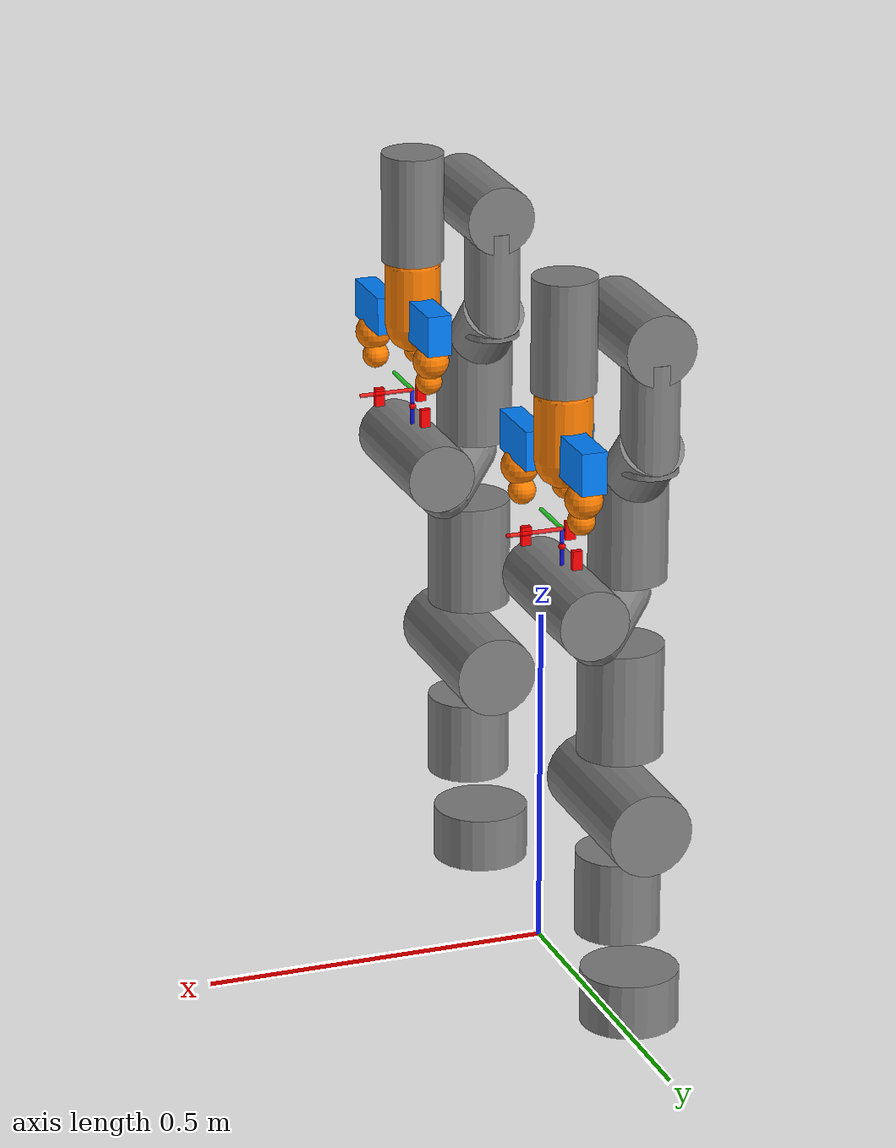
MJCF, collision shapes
<mujoco model="fr3_H_gripper_dual">
  <compiler angle="radian" meshdir="assets" />
  <option integrator="implicitfast" timestep="0.001" solver="Newton" iterations="100" jacobian="auto" tolerance="1e-8" cone="pyramidal" impratio="1" gravity="0 0 -9.81" />
  <option>
    <flag gravity="enable" override="enable" multiccd="enable" />
  </option>
  <default>
    <default class="fr3">
      <joint damping="0.21" armature="0.195" />
      <default class="visual_fr3">
        <geom type="mesh" group="2" contype="0" conaffinity="0" />
      </default>
      <default class="collision">
        <geom type="mesh" group="3" mass="0" density="0" />
      </default>
      <site size="0.001" rgba="0.5 0.5 0.5 0.3" group="4" />
    </default>
    <default class="H_gripper">
      <joint armature="0.1" damping="1.0" />
      <default class="visual">
        <geom type="mesh" contype="0" conaffinity="0" group="1" />
      </default>
      <default class="fingertip_pad_collision_1">
        <geom type="box" group="2" size="0.004 0.007 0.0135" contype="1" conaffinity="1" mass="0.01" pos="0.012 0.0 0.018" solref="0.02 1" solimp="0.95 0.99 0.001" friction="1.0 0.02 0.01" priority="3" rgba="1 0 0 0.5" />
      </default>
      <default class="fingertip_pad_collision_2">
        <geom type="box" group="2" size="0.004 0.007 0.0135" contype="1" conaffinity="1" mass="0.01" pos="-0.012 0.0 0.018" solref="0.02 1" solimp="0.95 0.99 0.001" friction="1.0 0.02 0.01" priority="3" rgba="1 0 0 0.5" />
      </default>
      <default class="rotate_A_link_collision">
        <geom type="box" group="2" size="0.025 0.015 0.025" contype="1" conaffinity="1" mass="0.01" pos="0.085 0 -0.003" solref="0.02 1" solimp="0.95 0.99 0.001" friction="1.0 0.02 0.01" priority="3" rgba="1 0 0 0.5" />
      </default>
      <default class="rotate_B_link_collision">
        <geom type="box" group="2" size="0.025 0.012 0.01" contype="1" conaffinity="1" mass="0.01" pos="-0.085 0.032 0.01" solref="0.02 1" solimp="0.95 0.99 0.001" friction="1.0 0.02 0.01" priority="3" rgba="1 0 0 0.5" />
      </default>
      <default class="rotate_C_link_collision">
        <geom type="box" group="2" size="0.025 0.012 0.01" contype="1" conaffinity="1" mass="0.01" pos="-0.085 -0.032 0.01" solref="0.02 1" solimp="0.95 0.99 0.001" friction="1.0 0.02 0.01" priority="3" rgba="1 0 0 0.5" />
      </default>
    </default>
  </default>
  <asset>
    <material name="black" rgba=".2 .2 .2 1" />
    <material name="white" rgba="1 1 1 1" />
    <material name="red" rgba="1 0.072272 0.039546 1" />
    <material name="gray" rgba="0.863156 0.863156 0.863157 1" />
    <material name="button_green" rgba="0.102241 0.571125 0.102242 1" />
    <material name="button_red" rgba="0.520996 0.008023 0.013702 1" />
    <material name="button_blue" rgba="0.024157 0.445201 0.737911 1" />
    <material name="off_white" rgba="0.901961 0.921569 0.929412 1" />
    <mesh file="link0_0.obj" />
    <mesh file="link0_1.obj" />
    <mesh file="link0_2.obj" />
    <mesh file="link0_3.obj" />
    <mesh file="link0_4.obj" />
    <mesh file="link0_5.obj" />
    <mesh file="link0_6.obj" />
    <mesh file="link1.obj" />
    <mesh file="link2.obj" />
    <mesh file="link3_0.obj" />
    <mesh file="link3_1.obj" />
    <mesh file="link4_0.obj" />
    <mesh file="link4_1.obj" />
    <mesh file="link5_0.obj" />
    <mesh file="link5_1.obj" />
    <mesh file="link5_2.obj" />
    <mesh file="link6_0.obj" />
    <mesh file="link6_1.obj" />
    <mesh file="link6_2.obj" />
    <mesh file="link6_3.obj" />
    <mesh file="link6_4.obj" />
    <mesh file="link6_5.obj" />
    <mesh file="link6_6.obj" />
    <mesh file="link6_7.obj" />
    <mesh file="link7_0.obj" />
    <mesh file="link7_1.obj" />
    <mesh file="link7_2.obj" />
    <mesh file="link7_3.obj" />
    <mesh name="base_link" file="gripper/base_link.STL" />
  </asset>
  <worldbody>
    <body name="l_base" pos="0 0.3 0" gravcomp="1">
      <inertial pos="0 0 0" mass="0.001" diaginertia="1e-6 1e-6 1e-6" />
      <geom mesh="link0_0" material="black" class="visual_fr3" />
      <geom mesh="link0_1" material="white" class="visual_fr3" />
      <geom mesh="link0_2" material="white" class="visual_fr3" />
      <geom mesh="link0_3" material="white" class="visual_fr3" />
      <geom mesh="link0_4" material="white" class="visual_fr3" />
      <geom mesh="link0_5" material="red" class="visual_fr3" />
      <geom mesh="link0_6" material="black" class="visual_fr3" />
      <geom name="l_link0_R_col" type="cylinder" size="0.07 0.04" pos="-0.02 0 0.04" class="collision" />
      <body name="l_fr3_link1" pos="0 0 0.333" childclass="fr3" gravcomp="1">
        <inertial pos="4.128e-07 -0.0181251 -0.0386036" quat="0.998098 -0.0605364 0.00380499 0.0110109" mass="2.92747" diaginertia="0.0239286 0.0227246 0.00610634" />
        <joint name="l_fr3_joint1" axis="0 0 1" range="-2.7437 2.7437" actuatorfrcrange="-87 87" />
        <geom name="l_link1_R_col1" type="cylinder" size="0.06 0.06" pos="0 0 -0.13" class="collision" />
        <geom name="l_link1_R_col2" type="cylinder" size="0.06 0.12" pos="0 0 0.0" euler="-1.5708 0 0" class="collision" />
        <geom material="white" mesh="link1" class="visual_fr3" />
        <body name="l_fr3_link2" quat="1 -1 0 0" gravcomp="1">
          <inertial pos="0.00318289 -0.0743222 0.00881461" quat="0.502599 0.584437 -0.465998 0.434366" mass="2.93554" diaginertia="0.0629567 0.0411924 0.0246371" />
          <joint name="l_fr3_joint2" axis="0 0 1" range="-1.7837 1.7837" actuatorfrcrange="-87 87" />
          <geom material="white" mesh="link2" class="visual_fr3" />
          <geom name="l_link2_R_col" type="cylinder" size="0.06 0.08" pos="0 -0.16 0.0" euler="-1.5708 0 0" class="collision" />
          <body name="l_fr3_link3" pos="0 -0.316 0" quat="1 1 0 0" gravcomp="1">
            <inertial pos="0.0407016 -0.00482006 -0.0289731" quat="0.921025 -0.244161 0.155272 0.260745" mass="2.2449" diaginertia="0.0267409 0.0189869 0.0171587" />
            <joint name="l_fr3_joint3" axis="0 0 1" range="-2.9007 2.9007" actuatorfrcrange="-87 87" />
            <geom mesh="link3_0" material="white" class="visual_fr3" />
            <geom mesh="link3_1" material="black" class="visual_fr3" />
            <geom name="l_link3_R_col1" type="capsule" size="0.04" fromto="0 0 0 0.05 0.03 -0.05" class="collision" />
            <body name="l_fr3_link4" pos="0.0825 0 0" quat="1 1 0 0" gravcomp="1">
              <inertial pos="-0.0459101 0.0630493 -0.00851879" quat="0.438018 0.803311 0.00937812 0.403414" mass="2.6156" diaginertia="0.05139 0.0372717 0.0160047" />
              <joint name="l_fr3_joint4" axis="0 0 1" range="-3.0421 -0.1518" actuatorfrcrange="-87 87" />
              <geom mesh="link4_0" material="white" class="visual_fr3" />
              <geom mesh="link4_1" material="black" class="visual_fr3" />
              <geom name="l_link4_R_col1" type="cylinder" size="0.05 0.11" pos="0 0 0" class="collision" />
              <geom name="l_link4_R_col2" type="cylinder" size="0.055 0.08" pos="-0.09 0.1 0" euler="-1.5708 0 0" class="collision" />
              <body name="l_fr3_link5" pos="-0.0825 0.384 0" quat="1 -1 0 0" gravcomp="1">
                <inertial pos="-0.00160396 0.0292536 -0.0972966" quat="0.919031 0.125604 0.0751531 -0.366003" mass="2.32712" diaginertia="0.0579335 0.0449144 0.0130634" />
                <joint name="l_fr3_joint5" axis="0 0 1" range="-2.8065 2.8065" actuatorfrcrange="-12 12" armature="0.074" frictionloss="0.763" />
                <geom mesh="link5_0" material="white" class="visual_fr3" />
                <geom mesh="link5_1" material="white" class="visual_fr3" />
                <geom mesh="link5_2" material="black" class="visual_fr3" />
                <geom name="l_link5_R_col1" type="cylinder" size="0.04 0.08" pos="0.0 0.09 -0.1" class="collision" />
                <geom name="l_link5_R_col2" type="cylinder" size="0.045 0.04" pos="0.0 0.07 -0.17" euler="-0.7854 0 0" class="collision" />
                <body name="l_fr3_link6" quat="1 1 0 0" gravcomp="1">
                  <inertial pos="0.0597131 -0.0410295 -0.0101693" quat="0.621301 0.552665 0.510011 0.220081" mass="1.81704" diaginertia="0.0175039 0.0161123 0.00193529" />
                  <joint name="l_fr3_joint6" axis="0 0 1" range="0.5445 4.5169" actuatorfrcrange="-12 12" armature="0.074" frictionloss="0.44" />
                  <geom mesh="link6_0" material="button_green" class="visual_fr3" />
                  <geom mesh="link6_1" material="white" class="visual_fr3" />
                  <geom mesh="link6_2" material="white" class="visual_fr3" />
                  <geom mesh="link6_3" material="gray" class="visual_fr3" />
                  <geom mesh="link6_4" material="button_red" class="visual_fr3" />
                  <geom mesh="link6_5" material="white" class="visual_fr3" />
                  <geom mesh="link6_6" material="black" class="visual_fr3" />
                  <geom mesh="link6_7" material="button_blue" class="visual_fr3" />
                  <geom name="l_link6_R_col1" type="cylinder" size="0.05 0.09" pos="0 0 -0.038" class="collision" />
                  <body name="l_fr3_link7" pos="0.088 0 0" quat="1 1 0 0" gravcomp="1">
                    <inertial pos="0.00452258 0.00862619 -0.0161633" quat="0.727579 0.0978688 -0.24906 0.63168" mass="0.627143" diaginertia="0.000223836 0.000223642 5.64132e-07" />
                    <joint name="l_fr3_joint7" axis="0 0 1" range="-3.0159 3.0159" actuatorfrcrange="-12 12" armature="0.074" frictionloss="0.248" />
                    <geom mesh="link7_0" material="black" class="visual_fr3" />
                    <geom mesh="link7_1" material="white" class="visual_fr3" />
                    <geom mesh="link7_2" material="white" class="visual_fr3" />
                    <geom mesh="link7_3" material="black" class="visual_fr3" />
                    <geom name="l_link7_R_col" type="cylinder" size="0.045 0.08" pos="0 0 0.005" class="collision" />
                    <site name="l_hand_site" pos="0 0 0.308" group="0" />
                    <site name="l_frame_x" type="cylinder" pos="0.04 0 0.283" euler="0 1.5708 0" size="0.003 0.04" rgba="1 0 0 0.8" group="1" />
                    <site name="l_frame_y" type="cylinder" pos="0 0.04 0.283" euler="1.5708 0 0" size="0.003 0.04" rgba="0 1 0 0.8" group="1" />
                    <site name="l_frame_z" type="cylinder" pos="0 0 0.323" euler="0 0 0" size="0.003 0.04" rgba="0 0 1 0.8" group="1" />
                    <body name="l_hand" childclass="H_gripper" pos="0 0 0.165" gravcomp="1" euler="0 0 -1.5708">
                      <site name="l_gripper_site" type="sphere" pos="0 0 0.143" size="0.005" rgba="1 0 0 1" group="0" />
                      <inertial pos="0.00343395 0.00159719 -0.0359415" quat="-0.0187647 0.714578 0.0193531 0.699036" mass="0.565346" diaginertia="0.000313332 0.000193161 0.000168441" />
                      <!-- VISUAL group 1 / contype 0 : original mesh, render unchanged -->
                      <geom class="visual" mesh="base_link" rgba="0.752941 0.752941 0.752941 1" />
                      <geom name="l_gpu_base_col" type="capsule" size="0.040 0.045" pos="0 0 -0.028" group="3" mass="0" contype="1" conaffinity="1" rgba="1 0.5 0 0.3" />
                      <geom name="l_gpu_knuckle_A" type="box" size="0.055 0.018 0.030" pos="0.060 0 0.000" group="3" mass="0" contype="1" conaffinity="1" rgba="0 0.5 1 0.3" />
                      <geom name="l_gpu_knuckle_B" type="box" size="0.050 0.016 0.028" pos="-0.062 0.033 0.006" group="3" mass="0" contype="1" conaffinity="1" rgba="0 0.5 1 0.3" />
                      <geom name="l_gpu_knuckle_C" type="box" size="0.050 0.016 0.028" pos="-0.062 -0.033 0.006" group="3" mass="0" contype="1" conaffinity="1" rgba="0 0.5 1 0.3" />
                      <body name="l_finger_A" pos="0 0 0" gravcomp="1">
                        <inertial pos="0.045 0 0.10" mass="0.12" diaginertia="1e-4 1e-4 2e-5" />
                        <joint name="l_finger_A_slide_joint" type="slide" axis="-1 0 0" range="0 0.05" damping="10" armature="0.01" />
                        <geom name="l_gripper_pad_1" class="fingertip_pad_collision_2" pos="0.0541 0 0.143" group="3" />
                        <geom name="l_gpu_fA_sph_0" type="sphere" size="0.0261" pos="0.0772 -0.0002 0.0493" group="3" mass="0" contype="1" conaffinity="1" rgba="1 0.5 0 0.3" />
                        <geom name="l_gpu_fA_sph_1" type="sphere" size="0.0193" pos="0.0704 0.0005 0.0818" group="3" mass="0" contype="1" conaffinity="1" rgba="1 0.5 0 0.3" />
                      </body>
                      <body name="l_finger_BC" pos="0 0 0" gravcomp="1">
                        <inertial pos="-0.045 0 0.10" mass="0.24" diaginertia="2e-4 2e-4 4e-5" />
                        <joint name="l_finger_BC_slide_joint" type="slide" axis="1 0 0" range="0 0.05" damping="10" armature="0.01" />
                        <geom name="l_gripper_pad_2" class="fingertip_pad_collision_1" pos="-0.0541 0.0321 0.143" group="3" />
                        <geom name="l_gripper_pad_3" class="fingertip_pad_collision_1" pos="-0.0541 -0.0321 0.143" group="3" />
                        <geom name="l_gpu_fB_sph_0" type="sphere" size="0.0264" pos="-0.0775 0.0323 0.0497" group="3" mass="0" contype="1" conaffinity="1" rgba="1 0.5 0 0.3" />
                        <geom name="l_gpu_fB_sph_1" type="sphere" size="0.0193" pos="-0.0704 0.0317 0.0829" group="3" mass="0" contype="1" conaffinity="1" rgba="1 0.5 0 0.3" />
                        <geom name="l_gpu_fC_sph_0" type="sphere" size="0.0264" pos="-0.0775 -0.0319 0.0497" group="3" mass="0" contype="1" conaffinity="1" rgba="1 0.5 0 0.3" />
                        <geom name="l_gpu_fC_sph_1" type="sphere" size="0.0193" pos="-0.0704 -0.0325 0.0829" group="3" mass="0" contype="1" conaffinity="1" rgba="1 0.5 0 0.3" />
                      </body>
                    </body>
                  </body>
                </body>
              </body>
            </body>
          </body>
        </body>
      </body>
    </body>
    <body name="r_base" pos="0 -0.3 0" gravcomp="1">
      <inertial pos="0 0 0" mass="0.001" diaginertia="1e-6 1e-6 1e-6" />
      <geom mesh="link0_0" material="black" class="visual_fr3" />
      <geom mesh="link0_1" material="white" class="visual_fr3" />
      <geom mesh="link0_2" material="white" class="visual_fr3" />
      <geom mesh="link0_3" material="white" class="visual_fr3" />
      <geom mesh="link0_4" material="white" class="visual_fr3" />
      <geom mesh="link0_5" material="red" class="visual_fr3" />
      <geom mesh="link0_6" material="black" class="visual_fr3" />
      <geom name="r_link0_R_col" type="cylinder" size="0.07 0.04" pos="-0.02 0 0.04" class="collision" />
      <body name="r_fr3_link1" pos="0 0 0.333" childclass="fr3" gravcomp="1">
        <inertial pos="4.128e-07 -0.0181251 -0.0386036" quat="0.998098 -0.0605364 0.00380499 0.0110109" mass="2.92747" diaginertia="0.0239286 0.0227246 0.00610634" />
        <joint name="r_fr3_joint1" axis="0 0 1" range="-2.7437 2.7437" actuatorfrcrange="-87 87" />
        <geom name="r_link1_R_col1" type="cylinder" size="0.06 0.06" pos="0 0 -0.13" class="collision" />
        <geom name="r_link1_R_col2" type="cylinder" size="0.06 0.12" pos="0 0 0.0" euler="-1.5708 0 0" class="collision" />
        <geom material="white" mesh="link1" class="visual_fr3" />
        <body name="r_fr3_link2" quat="1 -1 0 0" gravcomp="1">
          <inertial pos="0.00318289 -0.0743222 0.00881461" quat="0.502599 0.584437 -0.465998 0.434366" mass="2.93554" diaginertia="0.0629567 0.0411924 0.0246371" />
          <joint name="r_fr3_joint2" axis="0 0 1" range="-1.7837 1.7837" actuatorfrcrange="-87 87" />
          <geom material="white" mesh="link2" class="visual_fr3" />
          <geom name="r_link2_R_col" type="cylinder" size="0.06 0.08" pos="0 -0.16 0.0" euler="-1.5708 0 0" class="collision" />
          <body name="r_fr3_link3" pos="0 -0.316 0" quat="1 1 0 0" gravcomp="1">
            <inertial pos="0.0407016 -0.00482006 -0.0289731" quat="0.921025 -0.244161 0.155272 0.260745" mass="2.2449" diaginertia="0.0267409 0.0189869 0.0171587" />
            <joint name="r_fr3_joint3" axis="0 0 1" range="-2.9007 2.9007" actuatorfrcrange="-87 87" />
            <geom mesh="link3_0" material="white" class="visual_fr3" />
            <geom mesh="link3_1" material="black" class="visual_fr3" />
            <geom name="r_link3_R_col1" type="capsule" size="0.04" fromto="0 0 0 0.05 0.03 -0.05" class="collision" />
            <body name="r_fr3_link4" pos="0.0825 0 0" quat="1 1 0 0" gravcomp="1">
              <inertial pos="-0.0459101 0.0630493 -0.00851879" quat="0.438018 0.803311 0.00937812 0.403414" mass="2.6156" diaginertia="0.05139 0.0372717 0.0160047" />
              <joint name="r_fr3_joint4" axis="0 0 1" range="-3.0421 -0.1518" actuatorfrcrange="-87 87" />
              <geom mesh="link4_0" material="white" class="visual_fr3" />
              <geom mesh="link4_1" material="black" class="visual_fr3" />
              <geom name="r_link4_R_col1" type="cylinder" size="0.05 0.11" pos="0 0 0" class="collision" />
              <geom name="r_link4_R_col2" type="cylinder" size="0.055 0.08" pos="-0.09 0.1 0" euler="-1.5708 0 0" class="collision" />
              <body name="r_fr3_link5" pos="-0.0825 0.384 0" quat="1 -1 0 0" gravcomp="1">
                <inertial pos="-0.00160396 0.0292536 -0.0972966" quat="0.919031 0.125604 0.0751531 -0.366003" mass="2.32712" diaginertia="0.0579335 0.0449144 0.0130634" />
                <joint name="r_fr3_joint5" axis="0 0 1" range="-2.8065 2.8065" actuatorfrcrange="-12 12" armature="0.074" frictionloss="0.763" />
                <geom mesh="link5_0" material="white" class="visual_fr3" />
                <geom mesh="link5_1" material="white" class="visual_fr3" />
                <geom mesh="link5_2" material="black" class="visual_fr3" />
                <geom name="r_link5_R_col1" type="cylinder" size="0.04 0.08" pos="0.0 0.09 -0.1" class="collision" />
                <geom name="r_link5_R_col2" type="cylinder" size="0.045 0.04" pos="0.0 0.07 -0.17" euler="-0.7854 0 0" class="collision" />
                <body name="r_fr3_link6" quat="1 1 0 0" gravcomp="1">
                  <inertial pos="0.0597131 -0.0410295 -0.0101693" quat="0.621301 0.552665 0.510011 0.220081" mass="1.81704" diaginertia="0.0175039 0.0161123 0.00193529" />
                  <joint name="r_fr3_joint6" axis="0 0 1" range="0.5445 4.5169" actuatorfrcrange="-12 12" armature="0.074" frictionloss="0.44" />
                  <geom mesh="link6_0" material="button_green" class="visual_fr3" />
                  <geom mesh="link6_1" material="white" class="visual_fr3" />
                  <geom mesh="link6_2" material="white" class="visual_fr3" />
                  <geom mesh="link6_3" material="gray" class="visual_fr3" />
                  <geom mesh="link6_4" material="button_red" class="visual_fr3" />
                  <geom mesh="link6_5" material="white" class="visual_fr3" />
                  <geom mesh="link6_6" material="black" class="visual_fr3" />
                  <geom mesh="link6_7" material="button_blue" class="visual_fr3" />
                  <geom name="r_link6_R_col1" type="cylinder" size="0.05 0.09" pos="0 0 -0.038" class="collision" />
                  <body name="r_fr3_link7" pos="0.088 0 0" quat="1 1 0 0" gravcomp="1">
                    <inertial pos="0.00452258 0.00862619 -0.0161633" quat="0.727579 0.0978688 -0.24906 0.63168" mass="0.627143" diaginertia="0.000223836 0.000223642 5.64132e-07" />
                    <joint name="r_fr3_joint7" axis="0 0 1" range="-3.0159 3.0159" actuatorfrcrange="-12 12" armature="0.074" frictionloss="0.248" />
                    <geom mesh="link7_0" material="black" class="visual_fr3" />
                    <geom mesh="link7_1" material="white" class="visual_fr3" />
                    <geom mesh="link7_2" material="white" class="visual_fr3" />
                    <geom mesh="link7_3" material="black" class="visual_fr3" />
                    <geom name="r_link7_R_col" type="cylinder" size="0.045 0.08" pos="0 0 0.005" class="collision" />
                    <site name="r_hand_site" pos="0 0 0.308" group="0" />
                    <site name="r_frame_x" type="cylinder" pos="0.04 0 0.283" euler="0 1.5708 0" size="0.003 0.04" rgba="1 0 0 0.8" group="1" />
                    <site name="r_frame_y" type="cylinder" pos="0 0.04 0.283" euler="1.5708 0 0" size="0.003 0.04" rgba="0 1 0 0.8" group="1" />
                    <site name="r_frame_z" type="cylinder" pos="0 0 0.323" euler="0 0 0" size="0.003 0.04" rgba="0 0 1 0.8" group="1" />
                    <body name="r_hand" childclass="H_gripper" pos="0 0 0.165" gravcomp="1" euler="0 0 -1.5708">
                      <site name="r_gripper_site" type="sphere" pos="0 0 0.143" size="0.005" rgba="1 0 0 1" group="0" />
                      <inertial pos="0.00343395 0.00159719 -0.0359415" quat="-0.0187647 0.714578 0.0193531 0.699036" mass="0.565346" diaginertia="0.000313332 0.000193161 0.000168441" />
                      <!-- VISUAL group 1 / contype 0 : original mesh, render unchanged -->
                      <geom class="visual" mesh="base_link" rgba="0.752941 0.752941 0.752941 1" />
                      <geom name="r_gpu_base_col" type="capsule" size="0.040 0.045" pos="0 0 -0.028" group="3" mass="0" contype="1" conaffinity="1" rgba="1 0.5 0 0.3" />
                      <geom name="r_gpu_knuckle_A" type="box" size="0.055 0.018 0.030" pos="0.060 0 0.000" group="3" mass="0" contype="1" conaffinity="1" rgba="0 0.5 1 0.3" />
                      <geom name="r_gpu_knuckle_B" type="box" size="0.050 0.016 0.028" pos="-0.062 0.033 0.006" group="3" mass="0" contype="1" conaffinity="1" rgba="0 0.5 1 0.3" />
                      <geom name="r_gpu_knuckle_C" type="box" size="0.050 0.016 0.028" pos="-0.062 -0.033 0.006" group="3" mass="0" contype="1" conaffinity="1" rgba="0 0.5 1 0.3" />
                      <body name="r_finger_A" pos="0 0 0" gravcomp="1">
                        <inertial pos="0.045 0 0.10" mass="0.12" diaginertia="1e-4 1e-4 2e-5" />
                        <joint name="r_finger_A_slide_joint" type="slide" axis="-1 0 0" range="0 0.05" damping="10" armature="0.01" />
                        <geom name="r_gripper_pad_1" class="fingertip_pad_collision_2" pos="0.0541 0 0.143" group="3" />
                        <geom name="r_gpu_fA_sph_0" type="sphere" size="0.0261" pos="0.0772 -0.0002 0.0493" group="3" mass="0" contype="1" conaffinity="1" rgba="1 0.5 0 0.3" />
                        <geom name="r_gpu_fA_sph_1" type="sphere" size="0.0193" pos="0.0704 0.0005 0.0818" group="3" mass="0" contype="1" conaffinity="1" rgba="1 0.5 0 0.3" />
                      </body>
                      <body name="r_finger_BC" pos="0 0 0" gravcomp="1">
                        <inertial pos="-0.045 0 0.10" mass="0.24" diaginertia="2e-4 2e-4 4e-5" />
                        <joint name="r_finger_BC_slide_joint" type="slide" axis="1 0 0" range="0 0.05" damping="10" armature="0.01" />
                        <geom name="r_gripper_pad_2" class="fingertip_pad_collision_1" pos="-0.0541 0.0321 0.143" group="3" />
                        <geom name="r_gripper_pad_3" class="fingertip_pad_collision_1" pos="-0.0541 -0.0321 0.143" group="3" />
                        <geom name="r_gpu_fB_sph_0" type="sphere" size="0.0264" pos="-0.0775 0.0323 0.0497" group="3" mass="0" contype="1" conaffinity="1" rgba="1 0.5 0 0.3" />
                        <geom name="r_gpu_fB_sph_1" type="sphere" size="0.0193" pos="-0.0704 0.0317 0.0829" group="3" mass="0" contype="1" conaffinity="1" rgba="1 0.5 0 0.3" />
                        <geom name="r_gpu_fC_sph_0" type="sphere" size="0.0264" pos="-0.0775 -0.0319 0.0497" group="3" mass="0" contype="1" conaffinity="1" rgba="1 0.5 0 0.3" />
                        <geom name="r_gpu_fC_sph_1" type="sphere" size="0.0193" pos="-0.0704 -0.0325 0.0829" group="3" mass="0" contype="1" conaffinity="1" rgba="1 0.5 0 0.3" />
                      </body>
                    </body>
                  </body>
                </body>
              </body>
            </body>
          </body>
        </body>
      </body>
    </body>
  </worldbody>
  <contact>
    <exclude name="l_grip_1" body1="l_hand" body2="l_finger_A" />
    <exclude name="l_grip_2" body1="l_hand" body2="l_finger_BC" />
    <exclude name="l_grip_3" body1="l_finger_A" body2="l_finger_BC" />
    <exclude name="r_grip_1" body1="r_hand" body2="r_finger_A" />
    <exclude name="r_grip_2" body1="r_hand" body2="r_finger_BC" />
    <exclude name="r_grip_3" body1="r_finger_A" body2="r_finger_BC" />
  </contact>
  <equality>
    <!-- ONE equality per arm: finger_BC slaved 1:1 to finger_A -> a single driven
         grasp dof per gripper, commanded through {l,r}_grab_motor. -->
    <joint name="l_finger_slide_1" joint1="l_finger_A_slide_joint" joint2="l_finger_BC_slide_joint" polycoef="0 1 0 0 0" solref="0.002 1" />
    <joint name="r_finger_slide_1" joint1="r_finger_A_slide_joint" joint2="r_finger_BC_slide_joint" polycoef="0 1 0 0 0" solref="0.002 1" />
  </equality>
  <actuator>
    <motor name="l_actuator1" joint="l_fr3_joint1" ctrllimited="true" ctrlrange="-87.0 87.0" />
    <motor name="l_actuator2" joint="l_fr3_joint2" ctrllimited="true" ctrlrange="-87.0 87.0" />
    <motor name="l_actuator3" joint="l_fr3_joint3" ctrllimited="true" ctrlrange="-87.0 87.0" />
    <motor name="l_actuator4" joint="l_fr3_joint4" ctrllimited="true" ctrlrange="-87.0 87.0" />
    <motor name="l_actuator5" joint="l_fr3_joint5" ctrllimited="true" ctrlrange="-12.0 12.0" />
    <motor name="l_actuator6" joint="l_fr3_joint6" ctrllimited="true" ctrlrange="-12.0 12.0" />
    <motor name="l_actuator7" joint="l_fr3_joint7" ctrllimited="true" ctrlrange="-12.0 12.0" />
    <position name="l_grab_motor" joint="l_finger_A_slide_joint" kp="200" kv="10" ctrllimited="true" ctrlrange="-0.1 0.1" forcerange="-10 10" />
    <motor name="r_actuator1" joint="r_fr3_joint1" ctrllimited="true" ctrlrange="-87.0 87.0" />
    <motor name="r_actuator2" joint="r_fr3_joint2" ctrllimited="true" ctrlrange="-87.0 87.0" />
    <motor name="r_actuator3" joint="r_fr3_joint3" ctrllimited="true" ctrlrange="-87.0 87.0" />
    <motor name="r_actuator4" joint="r_fr3_joint4" ctrllimited="true" ctrlrange="-87.0 87.0" />
    <motor name="r_actuator5" joint="r_fr3_joint5" ctrllimited="true" ctrlrange="-12.0 12.0" />
    <motor name="r_actuator6" joint="r_fr3_joint6" ctrllimited="true" ctrlrange="-12.0 12.0" />
    <motor name="r_actuator7" joint="r_fr3_joint7" ctrllimited="true" ctrlrange="-12.0 12.0" />
    <position name="r_grab_motor" joint="r_finger_A_slide_joint" kp="200" kv="10" ctrllimited="true" ctrlrange="-0.1 0.1" forcerange="-10 10" />
  </actuator>
</mujoco>
